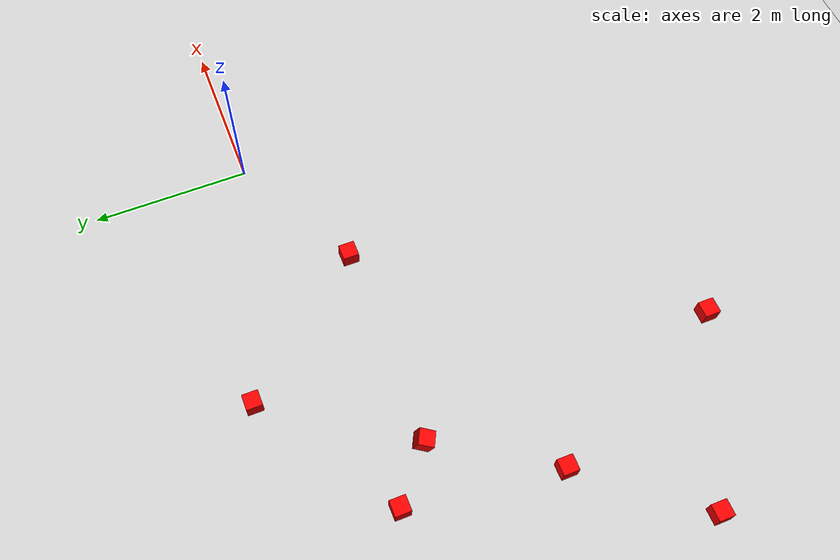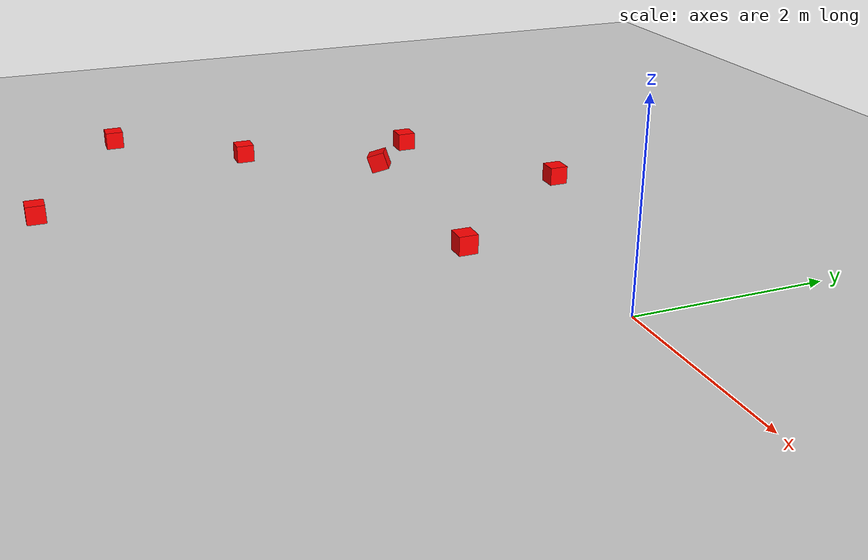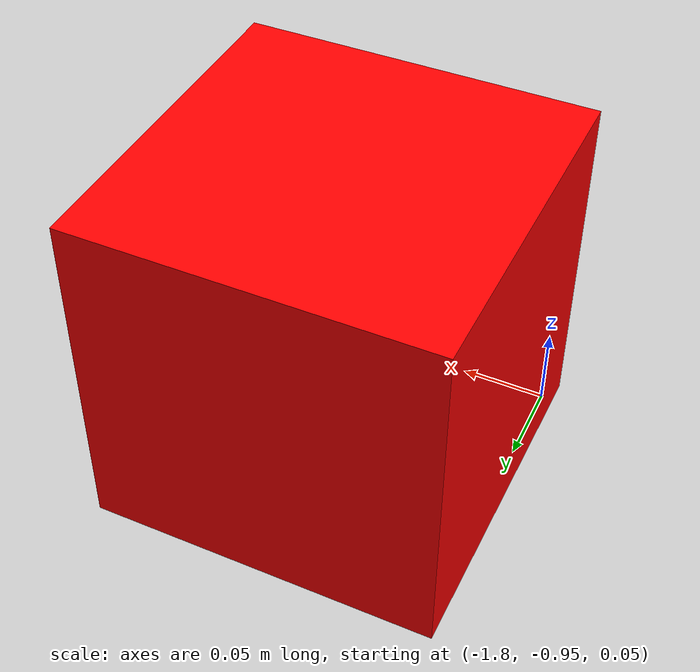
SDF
<sdf version="1.10">
 <world name="empty">
  <physics name="1ms" type="ignored">
   <max_step_size>0.001</max_step_size>
   <real_time_factor>1</real_time_factor>
   <real_time_update_rate>1000</real_time_update_rate>
  </physics>
  <plugin name="gz::sim::systems::Physics" filename="gz-sim-physics-system"/>
  <plugin name="gz::sim::systems::UserCommands" filename="gz-sim-user-commands-system"/>
  <plugin name="gz::sim::systems::SceneBroadcaster" filename="gz-sim-scene-broadcaster-system"/>
  <plugin name="gz::sim::systems::Contact" filename="gz-sim-contact-system"/>
  <plugin filename="gz-sim-sensors-system" name="gz::sim::systems::Sensors">
   <render_engine>ogre2</render_engine>
  </plugin>
  <gravity>0 0 -9.8000000000000007</gravity>
  <magnetic_field>5.5644999999999998e-06 2.2875799999999999e-05 -4.2388400000000002e-05</magnetic_field>
  <atmosphere type="adiabatic"/>
  <scene>
   <ambient>0.400000006 0.400000006 0.400000006 1</ambient>
   <background>0.699999988 0.699999988 0.699999988 1</background>
   <shadows>true</shadows>
  </scene>
  <model name="ground_plane">
   <static>true</static>
   <link name="link">
    <collision name="collision">
     <geometry><plane><normal>0 0 1</normal><size>100 100</size></plane></geometry>
    </collision>
    <visual name="visual">
     <geometry><plane><normal>0 0 1</normal><size>100 100</size></plane></geometry>
     <material>
      <ambient>0.800000012 0.800000012 0.800000012 1</ambient>
      <diffuse>0.800000012 0.800000012 0.800000012 1</diffuse>
      <specular>0.800000012 0.800000012 0.800000012 1</specular>
     </material>
    </visual>
    <inertial>
     <mass>1</mass>
     <inertia><ixx>1</ixx><ixy>0</ixy><ixz>0</ixz><iyy>1</iyy><iyz>0</iyz><izz>1</izz></inertia>
    </inertial>
   </link>
  </model>
  <model name="box">
   <pose>-4.2776098251342782 -0.8265429735183718 0.15995299816131592 0.33153062843766484
        -1.0651893145308122e-08 -0.48020796071596605</pose>
   <link name="box_link">
    <inertial>
     <inertia><ixx>0.16666</ixx><ixy>0</ixy><ixz>0</ixz><iyy>0.16666</iyy><iyz>0</iyz><izz>0.16666</izz></inertia>
     <mass>1</mass>
    </inertial>
    <collision name="box_collision">
     <geometry><box><size>0.20000000000000001 0.20000000000000001 0.20000000000000001</size></box></geometry>
    </collision>
    <visual name="box_visual">
     <geometry><box><size>0.20000000000000001 0.20000000000000001 0.20000000000000001</size></box></geometry>
     <material>
      <ambient>1 0 0 1</ambient>
      <diffuse>1 0 0 1</diffuse>
      <specular>0.100000001 0.100000001 0.100000001 1</specular>
     </material>
    </visual>
   </link>
   <static>false</static>
  </model>
  <model name="box_1">
   <pose>-3.1476243590484518 0.86739774401095682 0.15995299816131592 0 0 0</pose>
   <link name="box_link">
    <inertial>
     <inertia><ixx>0.16666</ixx><ixy>0</ixy><ixz>0</ixz><iyy>0.16666</iyy><iyz>0</iyz><izz>0.16666</izz></inertia>
     <mass>1</mass>
    </inertial>
    <collision name="box_collision">
     <geometry><box><size>0.20000000000000001 0.20000000000000001 0.20000000000000001</size></box></geometry>
    </collision>
    <visual name="box_visual">
     <geometry><box><size>0.20000000000000001 0.20000000000000001 0.20000000000000001</size></box></geometry>
     <material>
      <ambient>1 0 0 1</ambient>
      <diffuse>1 0 0 1</diffuse>
      <specular>0.100000001 0.100000001 0.100000001 1</specular>
     </material>
    </visual>
   </link>
   <static>false</static>
  </model>
  <model name="box_2">
   <pose>-4.9021902510099995 -0.28579822815080175 0.15995299816131592 0 0 0</pose>
   <link name="box_link">
    <inertial>
     <inertia><ixx>0.16666</ixx><ixy>0</ixy><ixz>0</ixz><iyy>0.16666</iyy><iyz>0</iyz><izz>0.16666</izz></inertia>
     <mass>1</mass>
    </inertial>
    <collision name="box_collision">
     <geometry><box><size>0.20000000000000001 0.20000000000000001 0.20000000000000001</size></box></geometry>
    </collision>
    <visual name="box_visual">
     <geometry><box><size>0.20000000000000001 0.20000000000000001 0.20000000000000001</size></box></geometry>
     <material>
      <ambient>1 0 0 1</ambient>
      <diffuse>1 0 0 1</diffuse>
      <specular>0.100000001 0.100000001 0.100000001 1</specular>
     </material>
    </visual>
   </link>
   <static>false</static>
  </model>
  <model name="box_3">
   <pose>-5.1545091889379435 -2.2139144970330222 0.15995299816131592 0 0 0</pose>
   <link name="box_link">
    <inertial>
     <inertia><ixx>0.16666</ixx><ixy>0</ixy><ixz>0</ixz><iyy>0.16666</iyy><iyz>0</iyz><izz>0.16666</izz></inertia>
     <mass>1</mass>
    </inertial>
    <collision name="box_collision">
     <geometry><box><size>0.20000000000000001 0.20000000000000001 0.20000000000000001</size></box></geometry>
    </collision>
    <visual name="box_visual">
     <geometry><box><size>0.20000000000000001 0.20000000000000001 0.20000000000000001</size></box></geometry>
     <material>
      <ambient>1 0 0 1</ambient>
      <diffuse>1 0 0 1</diffuse>
      <specular>0.100000001 0.100000001 0.100000001 1</specular>
     </material>
    </visual>
   </link>
   <static>false</static>
  </model>
  <model name="box_4">
   <pose>-4.0188833190798308 -4.6626272172500016 0.15995299816131592 0 0 0</pose>
   <link name="box_link">
    <inertial>
     <inertia><ixx>0.16666</ixx><ixy>0</ixy><ixz>0</ixz><iyy>0.16666</iyy><iyz>0</iyz><izz>0.16666</izz></inertia>
     <mass>1</mass>
    </inertial>
    <collision name="box_collision">
     <geometry><box><size>0.20000000000000001 0.20000000000000001 0.20000000000000001</size></box></geometry>
    </collision>
    <visual name="box_visual">
     <geometry><box><size>0.20000000000000001 0.20000000000000001 0.20000000000000001</size></box></geometry>
     <material>
      <ambient>1 0 0 1</ambient>
      <diffuse>1 0 0 1</diffuse>
      <specular>0.100000001 0.100000001 0.100000001 1</specular>
     </material>
    </visual>
   </link>
   <static>false</static>
  </model>
  <model name="box_5">
   <pose>-1.7091574690520082 -0.85299100914645098 0.15995299816131592 0 0 0</pose>
   <link name="box_link">
    <inertial>
     <inertia><ixx>0.16666</ixx><ixy>0</ixy><ixz>0</ixz><iyy>0.16666</iyy><iyz>0</iyz><izz>0.16666</izz></inertia>
     <mass>1</mass>
    </inertial>
    <collision name="box_collision">
     <geometry><box><size>0.20000000000000001 0.20000000000000001 0.20000000000000001</size></box></geometry>
    </collision>
    <visual name="box_visual">
     <geometry><box><size>0.20000000000000001 0.20000000000000001 0.20000000000000001</size></box></geometry>
     <material>
      <ambient>1 0 0 1</ambient>
      <diffuse>1 0 0 1</diffuse>
      <specular>0.100000001 0.100000001 0.100000001 1</specular>
     </material>
    </visual>
   </link>
   <static>false</static>
  </model>
  <model name="box_6">
   <pose>-6.2239949715224103 -3.5781889401336624 0.15995299816131592 0 0 0</pose>
   <link name="box_link">
    <inertial>
     <inertia><ixx>0.16666</ixx><ixy>0</ixy><ixz>0</ixz><iyy>0.16666</iyy><iyz>0</iyz><izz>0.16666</izz></inertia>
     <mass>1</mass>
    </inertial>
    <collision name="box_collision">
     <geometry><box><size>0.20000000000000001 0.20000000000000001 0.20000000000000001</size></box></geometry>
    </collision>
    <visual name="box_visual">
     <geometry><box><size>0.20000000000000001 0.20000000000000001 0.20000000000000001</size></box></geometry>
     <material>
      <ambient>1 0 0 1</ambient>
      <diffuse>1 0 0 1</diffuse>
      <specular>0.100000001 0.100000001 0.100000001 1</specular>
     </material>
    </visual>
   </link>
   <static>false</static>
  </model>
  <light name="sun" type="directional">
   <pose>0 0 10 0 0 0</pose>
   <intensity>1</intensity>
   <direction>-0.5 0.10000000000000001 -0.90000000000000002</direction>
   <diffuse>0.800000012 0.800000012 0.800000012 1</diffuse>
   <specular>0.200000003 0.200000003 0.200000003 1</specular>
   <attenuation>
    <range>1000</range>
    <linear>0.01</linear>
    <constant>0.90000000000000002</constant>
    <quadratic>0.001</quadratic>
   </attenuation>
   <spot><inner_angle>0</inner_angle><outer_angle>0</outer_angle><falloff>0</falloff></spot>
  </light>
 </world>
</sdf>
